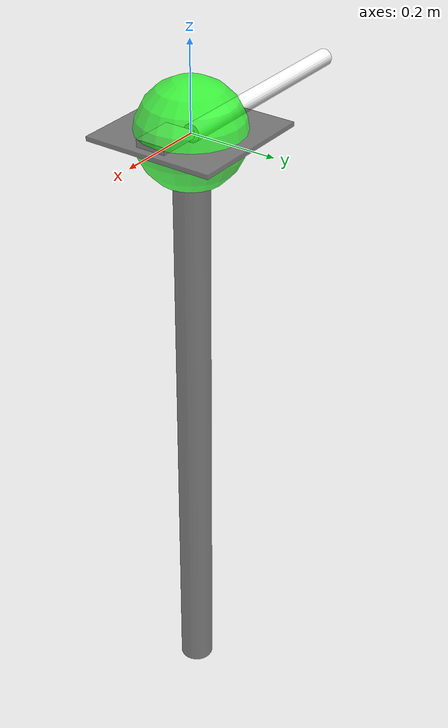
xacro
<?xml version="1.0"?>
<robot xmlns:xacro="http://playerstage.sourceforge.net/gazebo/xmlschema/#xacro" name="human">

  <xacro:arg name="tf_prefix" default=""/>

  <material name="green">
    <color rgba="0 1 0 0.7" />
  </material>
  <material name="grey">
    <color rgba="0.3 0.3 0.3 0.7" />
  </material>
  <material name="light_grey">
    <color rgba="0.6 0.6 0.6 0.7" />
  </material>
  <material name="white">
    <color rgba="1.0 1.0 1.0 0.9" />
  </material>

  <link name="$(arg tf_prefix)human_footprint">
    <visual>
      <origin xyz="0.0 0.0 0.005"/>
      <geometry>
        <box size="0.3 0.3 0.01"/>
      </geometry>
      <material name="grey"/>
    </visual>
  </link>

  <joint name="$(arg tf_prefix)footprint_to_neck" type="prismatic">
    <parent link="$(arg tf_prefix)human_footprint"/>
    <child link="$(arg tf_prefix)neck"/>
    <axis xyz="0 0 1"/>
    <limit lower="0.0" upper="2.0" effort="0.0" velocity="0.0"/>
  </joint>

  <link name="$(arg tf_prefix)neck">
    <visual>
      <origin xyz="0.0 0.0 -0.735"/>
      <geometry>
        <cylinder radius="0.04" length="1.47"/>
      </geometry>
      <material name="grey"/>
    </visual>
  </link>

  <joint name="$(arg tf_prefix)neck_to_eyes" type="prismatic">
    <parent link="$(arg tf_prefix)neck"/>
    <child link="$(arg tf_prefix)eyes"/>
    <axis xyz="0 0 1"/>
    <limit lower="0.0" upper="2.0" effort="0.0" velocity="0.0"/>
  </joint>

  <link name="$(arg tf_prefix)eyes">
    <visual>
      <geometry>
        <sphere radius="0.12"/>
      </geometry>
      <material name="green"/>
    </visual>
  </link>

  <joint name="$(arg tf_prefix)neck_to_shoulder" type="prismatic">
    <parent link="$(arg tf_prefix)neck"/>
    <child link="$(arg tf_prefix)shoulder"/>
    <axis xyz="0 -1 0"/>
    <limit lower="0.0" upper="2.0" effort="0.0" velocity="0.0"/>
  </joint>

  <!-- Convention: X-axis points along pointing arm direction -->

  <link name="$(arg tf_prefix)shoulder">
  </link>

  <joint name="$(arg tf_prefix)shoulder_to_wrist_yaw" type="continuous">
    <parent link="$(arg tf_prefix)shoulder"/>
    <child link="$(arg tf_prefix)shoulder_yaw"/>
    <axis xyz="0 0 1"/>
  </joint>

  <link name="$(arg tf_prefix)shoulder_yaw">
  </link>

  <joint name="$(arg tf_prefix)shoulder_to_wrist_pitch" type="continuous">
    <parent link="$(arg tf_prefix)shoulder_yaw"/>
    <child link="$(arg tf_prefix)shoulder_pitch"/>
    <axis xyz="0 1 0"/>
  </joint>

  <link name="$(arg tf_prefix)shoulder_pitch">
  </link>

  <joint name="$(arg tf_prefix)shoulder_to_wrist_roll" type="continuous">
    <parent link="$(arg tf_prefix)shoulder_pitch"/>
    <child link="$(arg tf_prefix)shoulder_roll"/>
    <axis xyz="1 0 0"/>
  </joint>

  <link name="$(arg tf_prefix)shoulder_roll">
  </link>

  <joint name="$(arg tf_prefix)shoulder_to_wrist" type="prismatic">
    <parent link="$(arg tf_prefix)shoulder_roll"/>
    <child link="$(arg tf_prefix)wrist"/>
    <limit lower="0.0" upper="2.0" effort="0.0" velocity="0.0"/>
    <axis xyz="1 0 0"/>
  </joint>

  <link name="$(arg tf_prefix)wrist">
    <visual>
      <origin xyz="0.05 -0.0275 0.0"/>
      <geometry>
        <box size="0.1 0.07 0.017"/>
      </geometry>
      <material name="white"/>
    </visual>
    <visual>
      <origin xyz="-0.255 0.0 0.0" rpy="0 1.57057 0"/>
      <geometry>
        <cylinder radius="0.02" length="0.51"/>
      </geometry>
      <material name="white"/>
    </visual>
  </link>

  <joint name="$(arg tf_prefix)wrist_to_finger" type="prismatic">
    <parent link="$(arg tf_prefix)wrist"/>
    <child link="$(arg tf_prefix)finger"/>
    <limit lower="0.0" upper="2.0" effort="0.0" velocity="0.0"/>
    <axis xyz="1 0 0"/>
  </joint>

  <link name="$(arg tf_prefix)finger">
    <visual>
      <origin xyz="-0.035 0.0 0.0" rpy="0 1.57075 0"/>
      <geometry>
        <cylinder radius="0.0075" length="0.10"/>
      </geometry>
      <material name="white"/>
    </visual>
  </link>

</robot>
